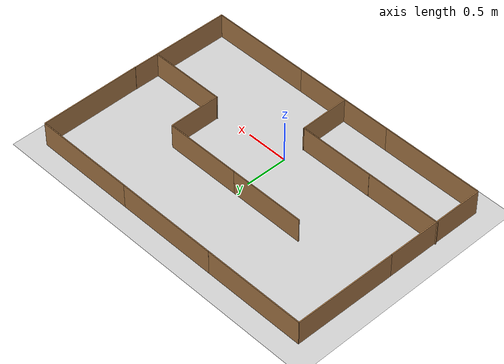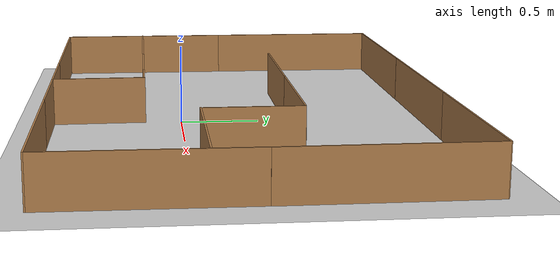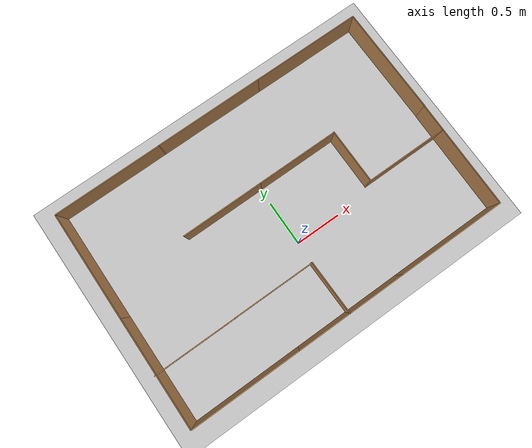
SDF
<sdf version="1.7">
 <world name="default">
  <light name="sun" type="directional">
   <pose>0 0 10 0 -0 0</pose>
   <diffuse>0.8 0.8 0.8 1</diffuse>
   <specular>0.2 0.2 0.2 1</specular>
   <attenuation>
    <range>1000</range>
    <constant>0.9</constant>
    <linear>0.01</linear>
    <quadratic>0.001</quadratic>
   </attenuation>
   <direction>-0.5 0.1 -0.9</direction>
   <spot><inner_angle>0</inner_angle><outer_angle>0</outer_angle><falloff>0</falloff></spot>
  </light>
  <model name="ground_plane">
   <static>1</static>
   <link name="link">
    <collision name="collision">
     <geometry><plane><normal>0 0 1</normal><size>100 100</size></plane></geometry>
     <surface>
      <contact><collide_bitmask>65535</collide_bitmask></contact>
      <friction><ode><mu>100</mu><mu2>50</mu2></ode></friction>
     </surface>
    </collision>
    <visual name="visual">
     <cast_shadows>0</cast_shadows>
     <geometry><plane><normal>0 0 1</normal><size>100 100</size></plane></geometry>
     <material>
      <script><uri>file://media/materials/scripts/gazebo.material</uri><name>Gazebo/Grey</name></script>
     </material>
    </visual>
   </link>
  </model>
  <gravity>0 0 -9.8</gravity>
  <magnetic_field>6e-06 2.3e-05 -4.2e-05</magnetic_field>
  <atmosphere type="adiabatic"/>
  <physics type="ode">
   <max_step_size>0.001</max_step_size>
   <real_time_factor>1</real_time_factor>
   <real_time_update_rate>1000</real_time_update_rate>
  </physics>
  <scene><ambient>0.4 0.4 0.4 1</ambient><background>0.7 0.7 0.7 1</background><shadows>1</shadows></scene>
  <spherical_coordinates>
   <surface_model>EARTH_WGS84</surface_model>
   <latitude_deg>0</latitude_deg>
   <longitude_deg>0</longitude_deg>
   <elevation>0</elevation>
   <heading_deg>0</heading_deg>
  </spherical_coordinates>
  <model name="Wall_120">
   <link name="Wall_0">
    <collision name="Wall_0_Collision">
     <geometry><box><size>1.2 0.01 0.3</size></box></geometry>
     <pose>0 0 0.15 0 -0 0</pose>
    </collision>
    <visual name="Wall_0_Visual">
     <pose>0 0 0.15 0 -0 0</pose>
     <geometry><box><size>1.2 0.01 0.3</size></box></geometry>
     <material>
      <script><uri>file://media/materials/scripts/gazebo.material</uri><name>Gazebo/Wood</name></script>
      <ambient>1 1 1 1</ambient>
     </material>
     <meta><layer>0</layer></meta>
    </visual>
    <pose>0 -0.8275 0 0 -0 3.14159</pose>
   </link>
   <static>1</static>
  </model>
  <model name="Wall_120_0">
   <pose>1.2 0 0 0 -0 0</pose>
   <link name="Wall_0">
    <collision name="Wall_0_Collision">
     <geometry><box><size>1.2 0.01 0.3</size></box></geometry>
     <pose>0 0 0.15 0 -0 0</pose>
    </collision>
    <visual name="Wall_0_Visual">
     <pose>0 0 0.15 0 -0 0</pose>
     <geometry><box><size>1.2 0.01 0.3</size></box></geometry>
     <material>
      <script><uri>file://media/materials/scripts/gazebo.material</uri><name>Gazebo/Wood</name></script>
      <ambient>1 1 1 1</ambient>
     </material>
     <meta><layer>0</layer></meta>
    </visual>
    <pose>0 -0.8275 0 0 -0 3.14159</pose>
   </link>
   <static>1</static>
  </model>
  <model name="Wall_120_1">
   <pose>-1.2 0 0 0 -0 0</pose>
   <link name="Wall_0">
    <collision name="Wall_0_Collision">
     <geometry><box><size>1.2 0.01 0.3</size></box></geometry>
     <pose>0 0 0.15 0 -0 0</pose>
    </collision>
    <visual name="Wall_0_Visual">
     <pose>0 0 0.15 0 -0 0</pose>
     <geometry><box><size>1.2 0.01 0.3</size></box></geometry>
     <material>
      <script><uri>file://media/materials/scripts/gazebo.material</uri><name>Gazebo/Wood</name></script>
      <ambient>1 1 1 1</ambient>
     </material>
     <meta><layer>0</layer></meta>
    </visual>
    <pose>0 -0.8275 0 0 -0 3.14159</pose>
   </link>
   <static>1</static>
  </model>
  <model name="Wall_120_2">
   <pose>-0.973318 -0.233391 0 0 0 -1.57898</pose>
   <link name="Wall_0">
    <collision name="Wall_0_Collision">
     <geometry><box><size>1.2 0.01 0.3</size></box></geometry>
     <pose>0 0 0.15 0 -0 0</pose>
    </collision>
    <visual name="Wall_0_Visual">
     <pose>0 0 0.15 0 -0 0</pose>
     <geometry><box><size>1.2 0.01 0.3</size></box></geometry>
     <material>
      <script><uri>file://media/materials/scripts/gazebo.material</uri><name>Gazebo/Wood</name></script>
      <ambient>1 1 1 1</ambient>
     </material>
     <meta><layer>0</layer></meta>
    </visual>
    <pose>0 -0.8275 0 0 -0 3.14159</pose>
   </link>
   <static>1</static>
  </model>
  <model name="Wall_120_3">
   <pose>-0.962859 0.960193 0 0 0 -1.58054</pose>
   <link name="Wall_0">
    <collision name="Wall_0_Collision">
     <geometry><box><size>1.2 0.01 0.3</size></box></geometry>
     <pose>0 0 0.15 0 -0 0</pose>
    </collision>
    <visual name="Wall_0_Visual">
     <pose>0 0 0.15 0 -0 0</pose>
     <geometry><box><size>1.2 0.01 0.3</size></box></geometry>
     <material>
      <script><uri>file://media/materials/scripts/gazebo.material</uri><name>Gazebo/Wood</name></script>
      <ambient>1 1 1 1</ambient>
     </material>
     <meta><layer>0</layer></meta>
    </visual>
    <pose>0 -0.8275 0 0 -0 3.14159</pose>
   </link>
   <static>1</static>
  </model>
  <model name="Wall_120_4">
   <pose>-1.18718 2.39501 0 0 -0 0</pose>
   <link name="Wall_0">
    <collision name="Wall_0_Collision">
     <geometry><box><size>1.2 0.01 0.3</size></box></geometry>
     <pose>0 0 0.15 0 -0 0</pose>
    </collision>
    <visual name="Wall_0_Visual">
     <pose>0 0 0.15 0 -0 0</pose>
     <geometry><box><size>1.2 0.01 0.3</size></box></geometry>
     <material>
      <script><uri>file://media/materials/scripts/gazebo.material</uri><name>Gazebo/Wood</name></script>
      <ambient>1 1 1 1</ambient>
     </material>
     <meta><layer>0</layer></meta>
    </visual>
    <pose>0 -0.8275 0 0 -0 3.14159</pose>
   </link>
   <static>1</static>
  </model>
  <model name="Wall_120_5">
   <pose>0.008561 2.39546 0 0 -0 0</pose>
   <link name="Wall_0">
    <collision name="Wall_0_Collision">
     <geometry><box><size>1.2 0.01 0.3</size></box></geometry>
     <pose>0 0 0.15 0 -0 0</pose>
    </collision>
    <visual name="Wall_0_Visual">
     <pose>0 0 0.15 0 -0 0</pose>
     <geometry><box><size>1.2 0.01 0.3</size></box></geometry>
     <material>
      <script><uri>file://media/materials/scripts/gazebo.material</uri><name>Gazebo/Wood</name></script>
      <ambient>1 1 1 1</ambient>
     </material>
     <meta><layer>0</layer></meta>
    </visual>
    <pose>0 -0.8275 0 0 -0 3.14159</pose>
   </link>
   <static>1</static>
  </model>
  <model name="Wall_120_6">
   <pose>1.20528 2.39543 0 0 -0 0</pose>
   <link name="Wall_0">
    <collision name="Wall_0_Collision">
     <geometry><box><size>1.2 0.01 0.3</size></box></geometry>
     <pose>0 0 0.15 0 -0 0</pose>
    </collision>
    <visual name="Wall_0_Visual">
     <pose>0 0 0.15 0 -0 0</pose>
     <geometry><box><size>1.2 0.01 0.3</size></box></geometry>
     <material>
      <script><uri>file://media/materials/scripts/gazebo.material</uri><name>Gazebo/Wood</name></script>
      <ambient>1 1 1 1</ambient>
     </material>
     <meta><layer>0</layer></meta>
    </visual>
    <pose>0 -0.8275 0 0 -0 3.14159</pose>
   </link>
   <static>1</static>
  </model>
  <model name="Wall_120_7">
   <pose>0.974186 -0.216946 0 0 -0 1.56289</pose>
   <link name="Wall_0">
    <collision name="Wall_0_Collision">
     <geometry><box><size>1.2 0.01 0.3</size></box></geometry>
     <pose>0 0 0.15 0 -0 0</pose>
    </collision>
    <visual name="Wall_0_Visual">
     <pose>0 0 0.15 0 -0 0</pose>
     <geometry><box><size>1.2 0.01 0.3</size></box></geometry>
     <material>
      <script><uri>file://media/materials/scripts/gazebo.material</uri><name>Gazebo/Wood</name></script>
      <ambient>1 1 1 1</ambient>
     </material>
     <meta><layer>0</layer></meta>
    </visual>
    <pose>0 -0.8275 0 0 -0 3.14159</pose>
   </link>
   <static>1</static>
  </model>
  <model name="Wall_120_8">
   <pose>0.977762 0.963009 0 0 -0 1.57612</pose>
   <link name="Wall_0">
    <collision name="Wall_0_Collision">
     <geometry><box><size>1.2 0.01 0.3</size></box></geometry>
     <pose>0 0 0.15 0 -0 0</pose>
    </collision>
    <visual name="Wall_0_Visual">
     <pose>0 0 0.15 0 -0 0</pose>
     <geometry><box><size>1.2 0.01 0.3</size></box></geometry>
     <material>
      <script><uri>file://media/materials/scripts/gazebo.material</uri><name>Gazebo/Wood</name></script>
      <ambient>1 1 1 1</ambient>
     </material>
     <meta><layer>0</layer></meta>
    </visual>
    <pose>0 -0.8275 0 0 -0 3.14159</pose>
   </link>
   <static>1</static>
  </model>
  <model name="Wall_90">
   <pose>1.34613 0.878377 0 0 -0 0</pose>
   <link name="Wall_0">
    <collision name="Wall_0_Collision">
     <geometry><box><size>0.9 0.01 0.3</size></box></geometry>
     <pose>0 0 0.15 0 -0 0</pose>
    </collision>
    <visual name="Wall_0_Visual">
     <pose>0 0 0.15 0 -0 0</pose>
     <geometry><box><size>0.9 0.01 0.3</size></box></geometry>
     <material>
      <script><uri>file://media/materials/scripts/gazebo.material</uri><name>Gazebo/Wood</name></script>
      <ambient>1 1 1 1</ambient>
     </material>
     <meta><layer>0</layer></meta>
    </visual>
    <pose>-0 -0.8025 0 0 -0 3.14159</pose>
   </link>
   <static>1</static>
  </model>
  <model name="Wall_90_0">
   <pose>0.458404 1.47956 0 0 -0 0</pose>
   <link name="Wall_0">
    <collision name="Wall_0_Collision">
     <geometry><box><size>0.9 0.01 0.3</size></box></geometry>
     <pose>0 0 0.15 0 -0 0</pose>
    </collision>
    <visual name="Wall_0_Visual">
     <pose>0 0 0.15 0 -0 0</pose>
     <geometry><box><size>0.9 0.01 0.3</size></box></geometry>
     <material>
      <script><uri>file://media/materials/scripts/gazebo.material</uri><name>Gazebo/Wood</name></script>
      <ambient>1 1 1 1</ambient>
     </material>
     <meta><layer>0</layer></meta>
    </visual>
    <pose>-0 -0.8025 0 0 -0 3.14159</pose>
   </link>
   <static>1</static>
  </model>
  <model name="Wall_90_1">
   <pose>-1.369 0.559964 0 0 -0 0</pose>
   <link name="Wall_0">
    <collision name="Wall_0_Collision">
     <geometry><box><size>0.9 0.01 0.3</size></box></geometry>
     <pose>0 0 0.15 0 -0 0</pose>
    </collision>
    <visual name="Wall_0_Visual">
     <pose>0 0 0.15 0 -0 0</pose>
     <geometry><box><size>0.9 0.01 0.3</size></box></geometry>
     <material>
      <script><uri>file://media/materials/scripts/gazebo.material</uri><name>Gazebo/Wood</name></script>
      <ambient>1 1 1 1</ambient>
     </material>
     <meta><layer>0</layer></meta>
    </visual>
    <pose>-0 -0.8025 0 0 -0 3.14159</pose>
   </link>
   <static>1</static>
  </model>
  <model name="Wall_90_2">
   <pose>-0.436561 1.47946 0 0 -0 0</pose>
   <link name="Wall_0">
    <collision name="Wall_0_Collision">
     <geometry><box><size>0.9 0.01 0.3</size></box></geometry>
     <pose>0 0 0.15 0 -0 0</pose>
    </collision>
    <visual name="Wall_0_Visual">
     <pose>0 0 0.15 0 -0 0</pose>
     <geometry><box><size>0.9 0.01 0.3</size></box></geometry>
     <material>
      <script><uri>file://media/materials/scripts/gazebo.material</uri><name>Gazebo/Wood</name></script>
      <ambient>1 1 1 1</ambient>
     </material>
     <meta><layer>0</layer></meta>
    </visual>
    <pose>-0 -0.8025 0 0 -0 3.14159</pose>
   </link>
   <static>1</static>
  </model>
  <model name="Wall_90_3">
   <pose>-0.474979 0.561462 0 0 -0 0</pose>
   <link name="Wall_0">
    <collision name="Wall_0_Collision">
     <geometry><box><size>0.9 0.01 0.3</size></box></geometry>
     <pose>0 0 0.15 0 -0 0</pose>
    </collision>
    <visual name="Wall_0_Visual">
     <pose>0 0 0.15 0 -0 0</pose>
     <geometry><box><size>0.9 0.01 0.3</size></box></geometry>
     <material>
      <script><uri>file://media/materials/scripts/gazebo.material</uri><name>Gazebo/Wood</name></script>
      <ambient>1 1 1 1</ambient>
     </material>
     <meta><layer>0</layer></meta>
    </visual>
    <pose>-0 -0.8025 0 0 -0 3.14159</pose>
   </link>
   <static>1</static>
  </model>
  <model name="Wall_60">
   <pose>1.81329 0.369524 0 0 0 -1.56934</pose>
   <link name="Wall_0">
    <collision name="Wall_0_Collision">
     <geometry><box><size>0.6 0.01 0.3</size></box></geometry>
     <pose>0 0 0.15 0 -0 0</pose>
    </collision>
    <visual name="Wall_0_Visual">
     <pose>0 0 0.15 0 -0 0</pose>
     <geometry><box><size>0.6 0.01 0.3</size></box></geometry>
     <material>
      <script><uri>file://media/materials/scripts/gazebo.material</uri><name>Gazebo/Wood</name></script>
      <ambient>1 1 1 1</ambient>
     </material>
     <meta><layer>0</layer></meta>
    </visual>
    <pose>-0.0125 -0.9075 0 0 -0 3.14159</pose>
   </link>
   <static>1</static>
  </model>
  <model name="Wall_60_0">
   <pose>0.884522 -0.527589 0 0 0 -1.55197</pose>
   <link name="Wall_0">
    <collision name="Wall_0_Collision">
     <geometry><box><size>0.6 0.01 0.3</size></box></geometry>
     <pose>0 0 0.15 0 -0 0</pose>
    </collision>
    <visual name="Wall_0_Visual">
     <pose>0 0 0.15 0 -0 0</pose>
     <geometry><box><size>0.6 0.01 0.3</size></box></geometry>
     <material>
      <script><uri>file://media/materials/scripts/gazebo.material</uri><name>Gazebo/Wood</name></script>
      <ambient>1 1 1 1</ambient>
     </material>
     <meta><layer>0</layer></meta>
    </visual>
    <pose>-0.0125 -0.9075 0 0 -0 3.14159</pose>
   </link>
   <static>1</static>
  </model>
 </world>
</sdf>
